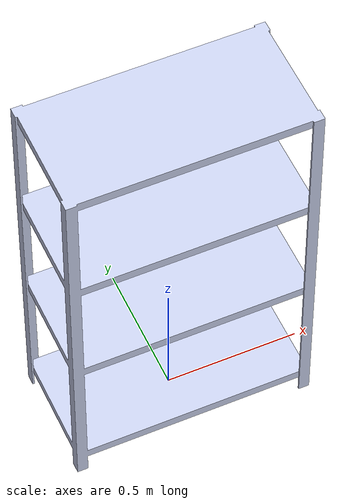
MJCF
<mujoco model="shelf">
    <default>
        <default class="collision">
            <geom condim="3" group="0" rgba="0.266754 0.174546 0.0644028 1"/>
        </default>
        <default class="visual">
            <geom condim="3" group="1" conaffinity="0" contype="0"/>
        </default>
    </default>

    <asset>
        <mesh name="shelf_mesh" file="@MODULE_INSTALL_LOCATION@/meshes/shelf/shelf.stl"/>
    </asset>

    <worldbody>
        <body name="shelf_base" pos="0 0 0">
            <inertial
                    pos="7.9615e-16 -8.3826e-16 0.79258"
                    mass="22.0"
                    fullinertia="6.24004 7.44478 1.97125 -2.2305e-16 -4.8160e-15 7.3883e-15"/>

            <geom class="collision" type="mesh"
                  mesh="shelf_mesh"
                  rgba="0.79216 0.81961 0.93333 1"/>
            <geom class="visual" type="mesh"
                  mesh="shelf_mesh"
                  rgba="0.79216 0.81961 0.93333 1"/>
        </body>
    </worldbody>
</mujoco>
